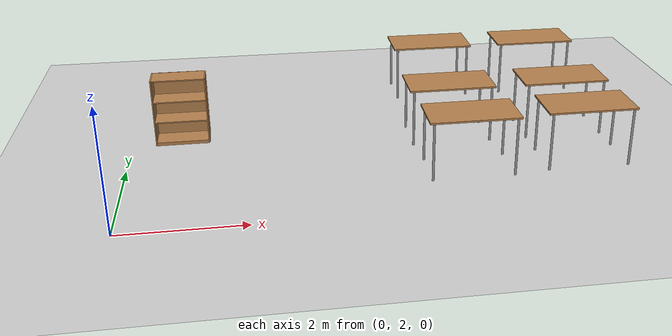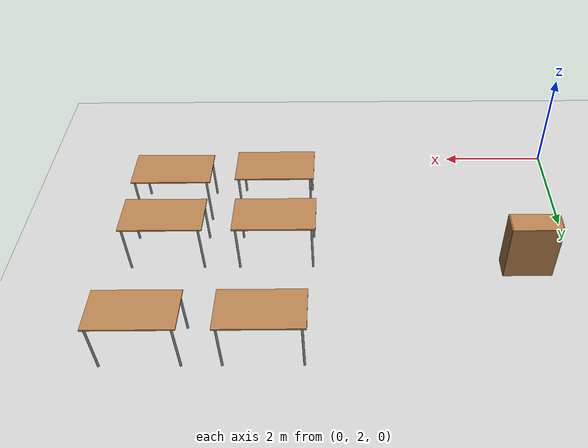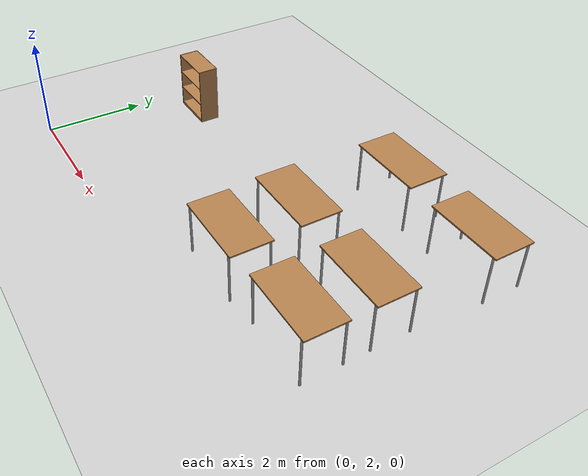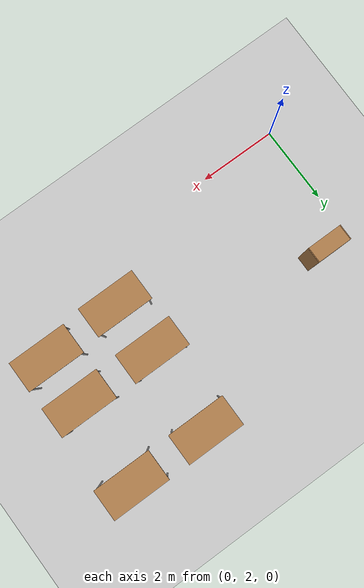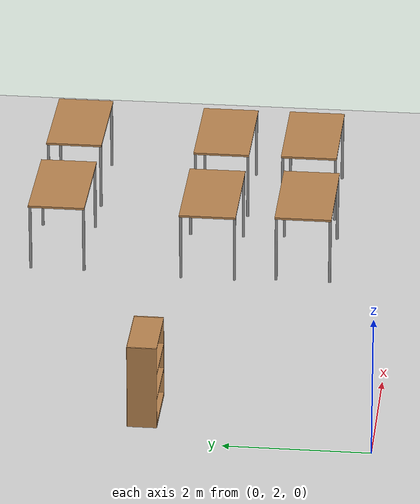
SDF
<sdf version="1.6">
 <world name="default">
  <model name="ground_plane">
   <static>1</static>
   <link name="link">
    <collision name="collision">
     <geometry><plane><normal>0 0 1</normal><size>100 100</size></plane></geometry>
     <surface>
      <contact><collide_bitmask>65535</collide_bitmask></contact>
      <friction><ode><mu>100</mu><mu2>50</mu2></ode></friction>
     </surface>
    </collision>
    <visual name="visual">
     <cast_shadows>0</cast_shadows>
     <geometry><plane><normal>0 0 1</normal><size>100 100</size></plane></geometry>
     <material>
      <script><uri>file://media/materials/scripts/gazebo.material</uri><name>Gazebo/Grey</name></script>
     </material>
    </visual>
   </link>
  </model>
  <model name="bookshelf_0">
   <static>1</static>
   <link name="link">
    <inertial><mass>1</mass></inertial>
    <collision name="back">
     <pose>0 0.005 0.6 0 -0 0</pose>
     <geometry><box><size>0.9 0.01 1.2</size></box></geometry>
    </collision>
    <visual name="visual1">
     <pose>0 0.005 0.6 0 -0 0</pose>
     <geometry><box><size>0.9 0.01 1.2</size></box></geometry>
     <material>
      <script><uri>file://media/materials/scripts/gazebo.material</uri><name>Gazebo/Wood</name></script>
     </material>
    </visual>
    <collision name="left_side">
     <pose>0.45 -0.195 0.6 0 -0 0</pose>
     <geometry><box><size>0.02 0.4 1.2</size></box></geometry>
    </collision>
    <visual name="visual2">
     <pose>0.45 -0.195 0.6 0 -0 0</pose>
     <geometry><box><size>0.02 0.4 1.2</size></box></geometry>
     <material>
      <script><uri>file://media/materials/scripts/gazebo.material</uri><name>Gazebo/Wood</name></script>
     </material>
    </visual>
    <collision name="right_side">
     <pose>-0.45 -0.195 0.6 0 -0 0</pose>
     <geometry><box><size>0.02 0.4 1.2</size></box></geometry>
    </collision>
    <visual name="visual3">
     <pose>-0.45 -0.195 0.6 0 -0 0</pose>
     <geometry><box><size>0.02 0.4 1.2</size></box></geometry>
     <material>
      <script><uri>file://media/materials/scripts/gazebo.material</uri><name>Gazebo/Wood</name></script>
     </material>
    </visual>
    <collision name="bottom">
     <pose>0 -0.195 0.03 0 -0 0</pose>
     <geometry><box><size>0.88 0.4 0.06</size></box></geometry>
    </collision>
    <visual name="visual4">
     <pose>0 -0.195 0.03 0 -0 0</pose>
     <geometry><box><size>0.88 0.4 0.06</size></box></geometry>
     <material>
      <script><uri>file://media/materials/scripts/gazebo.material</uri><name>Gazebo/Wood</name></script>
     </material>
    </visual>
    <collision name="top">
     <pose>0 -0.195 1.19 0 -0 0</pose>
     <geometry><box><size>0.88 0.4 0.02</size></box></geometry>
    </collision>
    <visual name="visual5">
     <pose>0 -0.195 1.19 0 -0 0</pose>
     <geometry><box><size>0.88 0.4 0.02</size></box></geometry>
     <material>
      <script><uri>file://media/materials/scripts/gazebo.material</uri><name>Gazebo/Wood</name></script>
     </material>
    </visual>
    <collision name="low_shelf">
     <pose>0 -0.195 0.43 0 -0 0</pose>
     <geometry><box><size>0.88 0.4 0.02</size></box></geometry>
    </collision>
    <visual name="visual6">
     <pose>0 -0.195 0.43 0 -0 0</pose>
     <geometry><box><size>0.88 0.4 0.02</size></box></geometry>
     <material>
      <script><uri>file://media/materials/scripts/gazebo.material</uri><name>Gazebo/Wood</name></script>
     </material>
    </visual>
    <collision name="high_shelf">
     <pose>0 -0.195 0.8 0 -0 0</pose>
     <geometry><box><size>0.88 0.4 0.02</size></box></geometry>
    </collision>
    <visual name="visual7">
     <pose>0 -0.195 0.8 0 -0 0</pose>
     <geometry><box><size>0.88 0.4 0.02</size></box></geometry>
     <material>
      <script><uri>file://media/materials/scripts/gazebo.material</uri><name>Gazebo/Wood</name></script>
     </material>
    </visual>
   </link>
   <pose>0.86777 5.31221 0 0 -0 0</pose>
  </model>
  <model name="table_11">
   <static>1</static>
   <link name="link">
    <collision name="surface">
     <pose>0 0 1 0 -0 0</pose>
     <geometry><box><size>1.5 0.8 0.03</size></box></geometry>
     <surface><friction><ode><mu>0.6</mu><mu2>0.6</mu2></ode></friction></surface>
    </collision>
    <visual name="visual1">
     <pose>0 0 1 0 -0 0</pose>
     <geometry><box><size>1.5 0.8 0.03</size></box></geometry>
     <material>
      <script><uri>file://media/materials/scripts/gazebo.material</uri><name>Gazebo/Wood</name></script>
     </material>
    </visual>
    <collision name="front_left_leg">
     <pose>0.68 0.38 0.5 0 -0 0</pose>
     <geometry><cylinder><radius>0.02</radius><length>1</length></cylinder></geometry>
    </collision>
    <visual name="front_left_leg">
     <pose>0.68 0.38 0.5 0 -0 0</pose>
     <geometry><cylinder><radius>0.02</radius><length>1</length></cylinder></geometry>
     <material>
      <script><uri>file://media/materials/scripts/gazebo.material</uri><name>Gazebo/Grey</name></script>
     </material>
    </visual>
    <collision name="front_right_leg">
     <pose>0.68 -0.38 0.5 0 -0 0</pose>
     <geometry><cylinder><radius>0.02</radius><length>1</length></cylinder></geometry>
    </collision>
    <visual name="front_right_leg">
     <pose>0.68 -0.38 0.5 0 -0 0</pose>
     <geometry><cylinder><radius>0.02</radius><length>1</length></cylinder></geometry>
     <material>
      <script><uri>file://media/materials/scripts/gazebo.material</uri><name>Gazebo/Grey</name></script>
     </material>
    </visual>
    <collision name="back_right_leg">
     <pose>-0.68 -0.38 0.5 0 -0 0</pose>
     <geometry><cylinder><radius>0.02</radius><length>1</length></cylinder></geometry>
    </collision>
    <visual name="back_right_leg">
     <pose>-0.68 -0.38 0.5 0 -0 0</pose>
     <geometry><cylinder><radius>0.02</radius><length>1</length></cylinder></geometry>
     <material>
      <script><uri>file://media/materials/scripts/gazebo.material</uri><name>Gazebo/Grey</name></script>
     </material>
    </visual>
    <collision name="back_left_leg">
     <pose>-0.68 0.38 0.5 0 -0 0</pose>
     <geometry><cylinder><radius>0.02</radius><length>1</length></cylinder></geometry>
    </collision>
    <visual name="back_left_leg">
     <pose>-0.68 0.38 0.5 0 -0 0</pose>
     <geometry><cylinder><radius>0.02</radius><length>1</length></cylinder></geometry>
     <material>
      <script><uri>file://media/materials/scripts/gazebo.material</uri><name>Gazebo/Grey</name></script>
     </material>
    </visual>
   </link>
   <pose>5.59165 6.82552 0 0 -0 0</pose>
  </model>
  <model name="table_12">
   <static>1</static>
   <link name="link">
    <collision name="surface">
     <pose>0 0 1 0 -0 0</pose>
     <geometry><box><size>1.5 0.8 0.03</size></box></geometry>
     <surface><friction><ode><mu>0.6</mu><mu2>0.6</mu2></ode></friction></surface>
    </collision>
    <visual name="visual1">
     <pose>0 0 1 0 -0 0</pose>
     <geometry><box><size>1.5 0.8 0.03</size></box></geometry>
     <material>
      <script><uri>file://media/materials/scripts/gazebo.material</uri><name>Gazebo/Wood</name></script>
     </material>
    </visual>
    <collision name="front_left_leg">
     <pose>0.68 0.38 0.5 0 -0 0</pose>
     <geometry><cylinder><radius>0.02</radius><length>1</length></cylinder></geometry>
    </collision>
    <visual name="front_left_leg">
     <pose>0.68 0.38 0.5 0 -0 0</pose>
     <geometry><cylinder><radius>0.02</radius><length>1</length></cylinder></geometry>
     <material>
      <script><uri>file://media/materials/scripts/gazebo.material</uri><name>Gazebo/Grey</name></script>
     </material>
    </visual>
    <collision name="front_right_leg">
     <pose>0.68 -0.38 0.5 0 -0 0</pose>
     <geometry><cylinder><radius>0.02</radius><length>1</length></cylinder></geometry>
    </collision>
    <visual name="front_right_leg">
     <pose>0.68 -0.38 0.5 0 -0 0</pose>
     <geometry><cylinder><radius>0.02</radius><length>1</length></cylinder></geometry>
     <material>
      <script><uri>file://media/materials/scripts/gazebo.material</uri><name>Gazebo/Grey</name></script>
     </material>
    </visual>
    <collision name="back_right_leg">
     <pose>-0.68 -0.38 0.5 0 -0 0</pose>
     <geometry><cylinder><radius>0.02</radius><length>1</length></cylinder></geometry>
    </collision>
    <visual name="back_right_leg">
     <pose>-0.68 -0.38 0.5 0 -0 0</pose>
     <geometry><cylinder><radius>0.02</radius><length>1</length></cylinder></geometry>
     <material>
      <script><uri>file://media/materials/scripts/gazebo.material</uri><name>Gazebo/Grey</name></script>
     </material>
    </visual>
    <collision name="back_left_leg">
     <pose>-0.68 0.38 0.5 0 -0 0</pose>
     <geometry><cylinder><radius>0.02</radius><length>1</length></cylinder></geometry>
    </collision>
    <visual name="back_left_leg">
     <pose>-0.68 0.38 0.5 0 -0 0</pose>
     <geometry><cylinder><radius>0.02</radius><length>1</length></cylinder></geometry>
     <material>
      <script><uri>file://media/materials/scripts/gazebo.material</uri><name>Gazebo/Grey</name></script>
     </material>
    </visual>
   </link>
   <pose>7.63515 6.82293 0 0 -0 0</pose>
  </model>
  <model name="table_13">
   <static>1</static>
   <link name="link">
    <collision name="surface">
     <pose>0 0 1 0 -0 0</pose>
     <geometry><box><size>1.5 0.8 0.03</size></box></geometry>
     <surface><friction><ode><mu>0.6</mu><mu2>0.6</mu2></ode></friction></surface>
    </collision>
    <visual name="visual1">
     <pose>0 0 1 0 -0 0</pose>
     <geometry><box><size>1.5 0.8 0.03</size></box></geometry>
     <material>
      <script><uri>file://media/materials/scripts/gazebo.material</uri><name>Gazebo/Wood</name></script>
     </material>
    </visual>
    <collision name="front_left_leg">
     <pose>0.68 0.38 0.5 0 -0 0</pose>
     <geometry><cylinder><radius>0.02</radius><length>1</length></cylinder></geometry>
    </collision>
    <visual name="front_left_leg">
     <pose>0.68 0.38 0.5 0 -0 0</pose>
     <geometry><cylinder><radius>0.02</radius><length>1</length></cylinder></geometry>
     <material>
      <script><uri>file://media/materials/scripts/gazebo.material</uri><name>Gazebo/Grey</name></script>
     </material>
    </visual>
    <collision name="front_right_leg">
     <pose>0.68 -0.38 0.5 0 -0 0</pose>
     <geometry><cylinder><radius>0.02</radius><length>1</length></cylinder></geometry>
    </collision>
    <visual name="front_right_leg">
     <pose>0.68 -0.38 0.5 0 -0 0</pose>
     <geometry><cylinder><radius>0.02</radius><length>1</length></cylinder></geometry>
     <material>
      <script><uri>file://media/materials/scripts/gazebo.material</uri><name>Gazebo/Grey</name></script>
     </material>
    </visual>
    <collision name="back_right_leg">
     <pose>-0.68 -0.38 0.5 0 -0 0</pose>
     <geometry><cylinder><radius>0.02</radius><length>1</length></cylinder></geometry>
    </collision>
    <visual name="back_right_leg">
     <pose>-0.68 -0.38 0.5 0 -0 0</pose>
     <geometry><cylinder><radius>0.02</radius><length>1</length></cylinder></geometry>
     <material>
      <script><uri>file://media/materials/scripts/gazebo.material</uri><name>Gazebo/Grey</name></script>
     </material>
    </visual>
    <collision name="back_left_leg">
     <pose>-0.68 0.38 0.5 0 -0 0</pose>
     <geometry><cylinder><radius>0.02</radius><length>1</length></cylinder></geometry>
    </collision>
    <visual name="back_left_leg">
     <pose>-0.68 0.38 0.5 0 -0 0</pose>
     <geometry><cylinder><radius>0.02</radius><length>1</length></cylinder></geometry>
     <material>
      <script><uri>file://media/materials/scripts/gazebo.material</uri><name>Gazebo/Grey</name></script>
     </material>
    </visual>
   </link>
   <pose>5.50511 4.67569 0 0 -0 0</pose>
  </model>
  <model name="table_14">
   <static>1</static>
   <link name="link">
    <collision name="surface">
     <pose>0 0 1 0 -0 0</pose>
     <geometry><box><size>1.5 0.8 0.03</size></box></geometry>
     <surface><friction><ode><mu>0.6</mu><mu2>0.6</mu2></ode></friction></surface>
    </collision>
    <visual name="visual1">
     <pose>0 0 1 0 -0 0</pose>
     <geometry><box><size>1.5 0.8 0.03</size></box></geometry>
     <material>
      <script><uri>file://media/materials/scripts/gazebo.material</uri><name>Gazebo/Wood</name></script>
     </material>
    </visual>
    <collision name="front_left_leg">
     <pose>0.68 0.38 0.5 0 -0 0</pose>
     <geometry><cylinder><radius>0.02</radius><length>1</length></cylinder></geometry>
    </collision>
    <visual name="front_left_leg">
     <pose>0.68 0.38 0.5 0 -0 0</pose>
     <geometry><cylinder><radius>0.02</radius><length>1</length></cylinder></geometry>
     <material>
      <script><uri>file://media/materials/scripts/gazebo.material</uri><name>Gazebo/Grey</name></script>
     </material>
    </visual>
    <collision name="front_right_leg">
     <pose>0.68 -0.38 0.5 0 -0 0</pose>
     <geometry><cylinder><radius>0.02</radius><length>1</length></cylinder></geometry>
    </collision>
    <visual name="front_right_leg">
     <pose>0.68 -0.38 0.5 0 -0 0</pose>
     <geometry><cylinder><radius>0.02</radius><length>1</length></cylinder></geometry>
     <material>
      <script><uri>file://media/materials/scripts/gazebo.material</uri><name>Gazebo/Grey</name></script>
     </material>
    </visual>
    <collision name="back_right_leg">
     <pose>-0.68 -0.38 0.5 0 -0 0</pose>
     <geometry><cylinder><radius>0.02</radius><length>1</length></cylinder></geometry>
    </collision>
    <visual name="back_right_leg">
     <pose>-0.68 -0.38 0.5 0 -0 0</pose>
     <geometry><cylinder><radius>0.02</radius><length>1</length></cylinder></geometry>
     <material>
      <script><uri>file://media/materials/scripts/gazebo.material</uri><name>Gazebo/Grey</name></script>
     </material>
    </visual>
    <collision name="back_left_leg">
     <pose>-0.68 0.38 0.5 0 -0 0</pose>
     <geometry><cylinder><radius>0.02</radius><length>1</length></cylinder></geometry>
    </collision>
    <visual name="back_left_leg">
     <pose>-0.68 0.38 0.5 0 -0 0</pose>
     <geometry><cylinder><radius>0.02</radius><length>1</length></cylinder></geometry>
     <material>
      <script><uri>file://media/materials/scripts/gazebo.material</uri><name>Gazebo/Grey</name></script>
     </material>
    </visual>
   </link>
   <pose>7.52543 4.67457 0 0 -0 0</pose>
  </model>
  <model name="table_15">
   <static>1</static>
   <link name="link">
    <collision name="surface">
     <pose>0 0 1 0 -0 0</pose>
     <geometry><box><size>1.5 0.8 0.03</size></box></geometry>
     <surface><friction><ode><mu>0.6</mu><mu2>0.6</mu2></ode></friction></surface>
    </collision>
    <visual name="visual1">
     <pose>0 0 1 0 -0 0</pose>
     <geometry><box><size>1.5 0.8 0.03</size></box></geometry>
     <material>
      <script><uri>file://media/materials/scripts/gazebo.material</uri><name>Gazebo/Wood</name></script>
     </material>
    </visual>
    <collision name="front_left_leg">
     <pose>0.68 0.38 0.5 0 -0 0</pose>
     <geometry><cylinder><radius>0.02</radius><length>1</length></cylinder></geometry>
    </collision>
    <visual name="front_left_leg">
     <pose>0.68 0.38 0.5 0 -0 0</pose>
     <geometry><cylinder><radius>0.02</radius><length>1</length></cylinder></geometry>
     <material>
      <script><uri>file://media/materials/scripts/gazebo.material</uri><name>Gazebo/Grey</name></script>
     </material>
    </visual>
    <collision name="front_right_leg">
     <pose>0.68 -0.38 0.5 0 -0 0</pose>
     <geometry><cylinder><radius>0.02</radius><length>1</length></cylinder></geometry>
    </collision>
    <visual name="front_right_leg">
     <pose>0.68 -0.38 0.5 0 -0 0</pose>
     <geometry><cylinder><radius>0.02</radius><length>1</length></cylinder></geometry>
     <material>
      <script><uri>file://media/materials/scripts/gazebo.material</uri><name>Gazebo/Grey</name></script>
     </material>
    </visual>
    <collision name="back_right_leg">
     <pose>-0.68 -0.38 0.5 0 -0 0</pose>
     <geometry><cylinder><radius>0.02</radius><length>1</length></cylinder></geometry>
    </collision>
    <visual name="back_right_leg">
     <pose>-0.68 -0.38 0.5 0 -0 0</pose>
     <geometry><cylinder><radius>0.02</radius><length>1</length></cylinder></geometry>
     <material>
      <script><uri>file://media/materials/scripts/gazebo.material</uri><name>Gazebo/Grey</name></script>
     </material>
    </visual>
    <collision name="back_left_leg">
     <pose>-0.68 0.38 0.5 0 -0 0</pose>
     <geometry><cylinder><radius>0.02</radius><length>1</length></cylinder></geometry>
    </collision>
    <visual name="back_left_leg">
     <pose>-0.68 0.38 0.5 0 -0 0</pose>
     <geometry><cylinder><radius>0.02</radius><length>1</length></cylinder></geometry>
     <material>
      <script><uri>file://media/materials/scripts/gazebo.material</uri><name>Gazebo/Grey</name></script>
     </material>
    </visual>
   </link>
   <pose>5.57028 3.3305 0 0 -0 0</pose>
  </model>
  <model name="table_16">
   <static>1</static>
   <link name="link">
    <collision name="surface">
     <pose>0 0 1 0 -0 0</pose>
     <geometry><box><size>1.5 0.8 0.03</size></box></geometry>
     <surface><friction><ode><mu>0.6</mu><mu2>0.6</mu2></ode></friction></surface>
    </collision>
    <visual name="visual1">
     <pose>0 0 1 0 -0 0</pose>
     <geometry><box><size>1.5 0.8 0.03</size></box></geometry>
     <material>
      <script><uri>file://media/materials/scripts/gazebo.material</uri><name>Gazebo/Wood</name></script>
     </material>
    </visual>
    <collision name="front_left_leg">
     <pose>0.68 0.38 0.5 0 -0 0</pose>
     <geometry><cylinder><radius>0.02</radius><length>1</length></cylinder></geometry>
    </collision>
    <visual name="front_left_leg">
     <pose>0.68 0.38 0.5 0 -0 0</pose>
     <geometry><cylinder><radius>0.02</radius><length>1</length></cylinder></geometry>
     <material>
      <script><uri>file://media/materials/scripts/gazebo.material</uri><name>Gazebo/Grey</name></script>
     </material>
    </visual>
    <collision name="front_right_leg">
     <pose>0.68 -0.38 0.5 0 -0 0</pose>
     <geometry><cylinder><radius>0.02</radius><length>1</length></cylinder></geometry>
    </collision>
    <visual name="front_right_leg">
     <pose>0.68 -0.38 0.5 0 -0 0</pose>
     <geometry><cylinder><radius>0.02</radius><length>1</length></cylinder></geometry>
     <material>
      <script><uri>file://media/materials/scripts/gazebo.material</uri><name>Gazebo/Grey</name></script>
     </material>
    </visual>
    <collision name="back_right_leg">
     <pose>-0.68 -0.38 0.5 0 -0 0</pose>
     <geometry><cylinder><radius>0.02</radius><length>1</length></cylinder></geometry>
    </collision>
    <visual name="back_right_leg">
     <pose>-0.68 -0.38 0.5 0 -0 0</pose>
     <geometry><cylinder><radius>0.02</radius><length>1</length></cylinder></geometry>
     <material>
      <script><uri>file://media/materials/scripts/gazebo.material</uri><name>Gazebo/Grey</name></script>
     </material>
    </visual>
    <collision name="back_left_leg">
     <pose>-0.68 0.38 0.5 0 -0 0</pose>
     <geometry><cylinder><radius>0.02</radius><length>1</length></cylinder></geometry>
    </collision>
    <visual name="back_left_leg">
     <pose>-0.68 0.38 0.5 0 -0 0</pose>
     <geometry><cylinder><radius>0.02</radius><length>1</length></cylinder></geometry>
     <material>
      <script><uri>file://media/materials/scripts/gazebo.material</uri><name>Gazebo/Grey</name></script>
     </material>
    </visual>
   </link>
   <pose>7.53448 3.41201 0 0 -0 0</pose>
  </model>
 </world>
</sdf>
